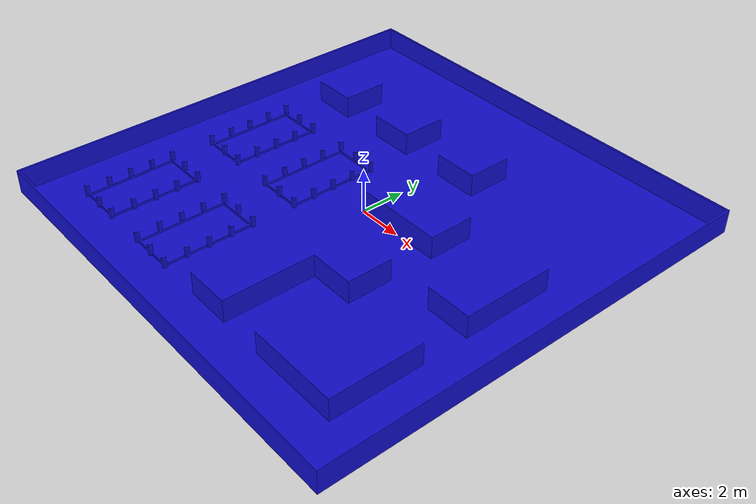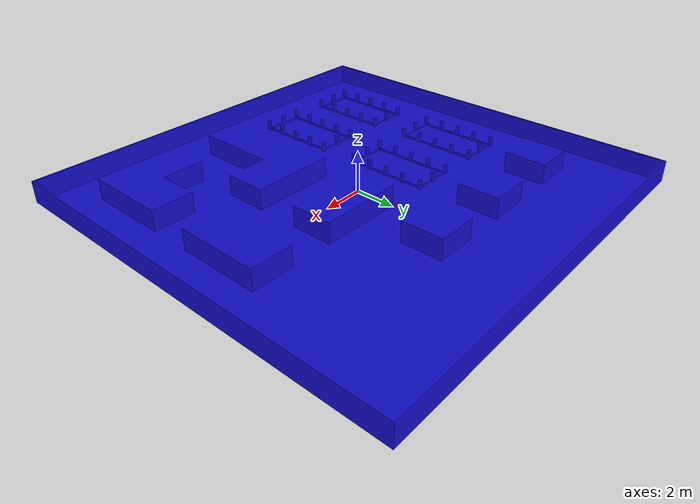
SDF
<?xml version="1.0" ?>
<sdf version="1.4">
  <world name="polygun">
    <model name="my_mesh">
      <pose>0 0 0  0 0 0</pose>
      <static>true</static>
      <scale>0.001 0.001 0.001</scale>
      <link name="body">
        <visual name="visual">
          <geometry>
            <mesh><uri>file://polygun.dae</uri></mesh>
          </geometry>
        </visual>
        <collision name="collision">
          <geometry>
            <mesh><uri>file://polygun.dae</uri></mesh>
          </geometry>
        </collision>
      </link>
    </model>
    <include>
      <uri>model://sun</uri>
    </include>
  </world>
</sdf>
